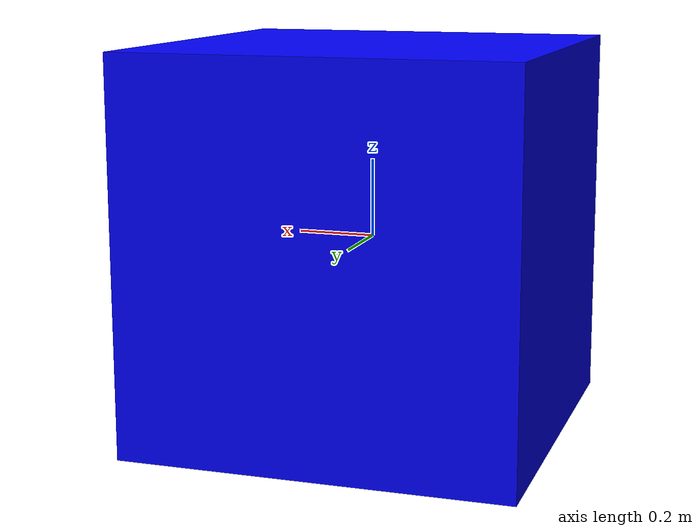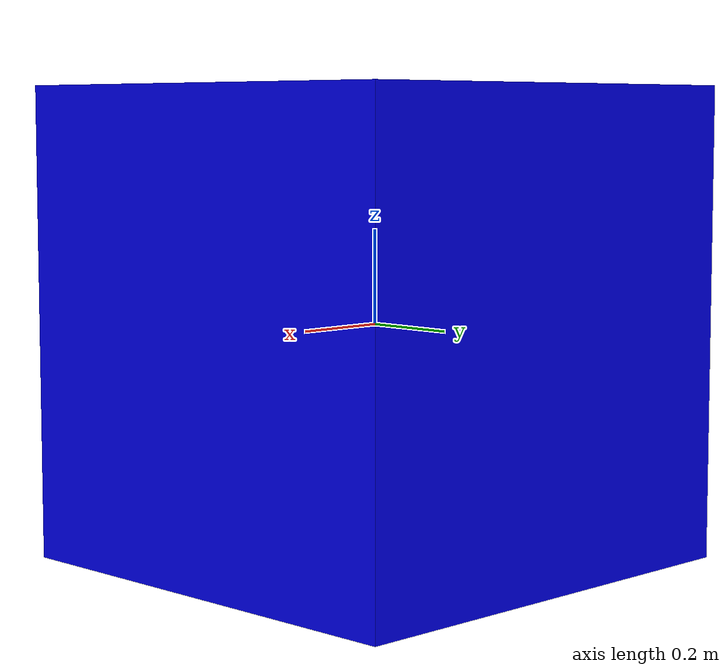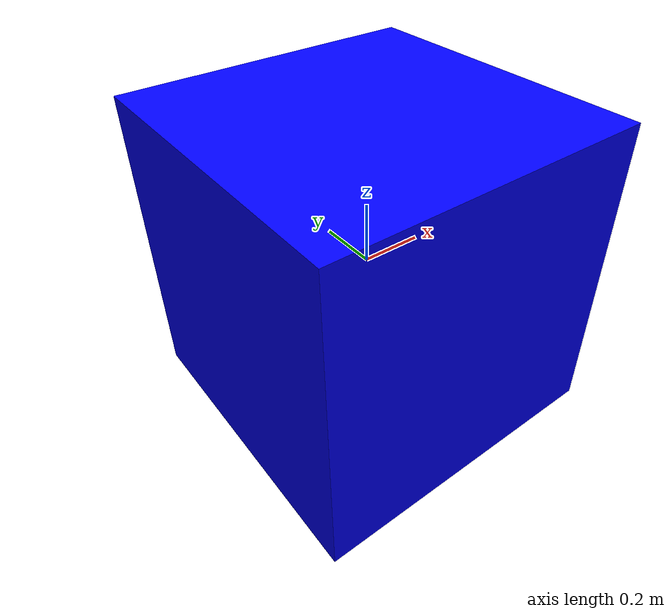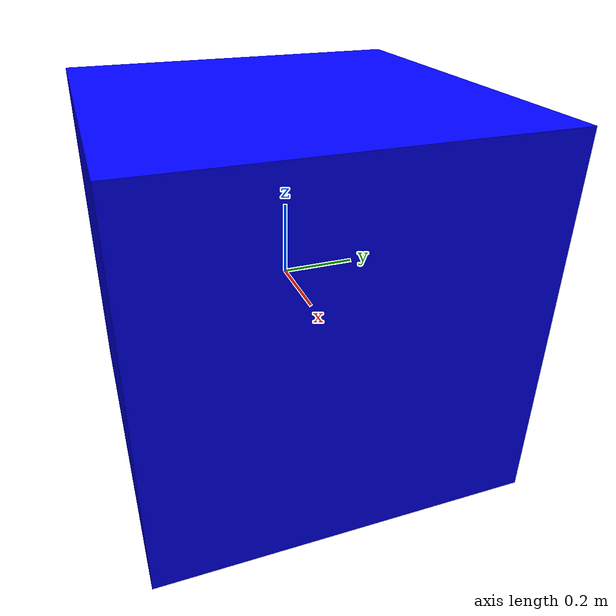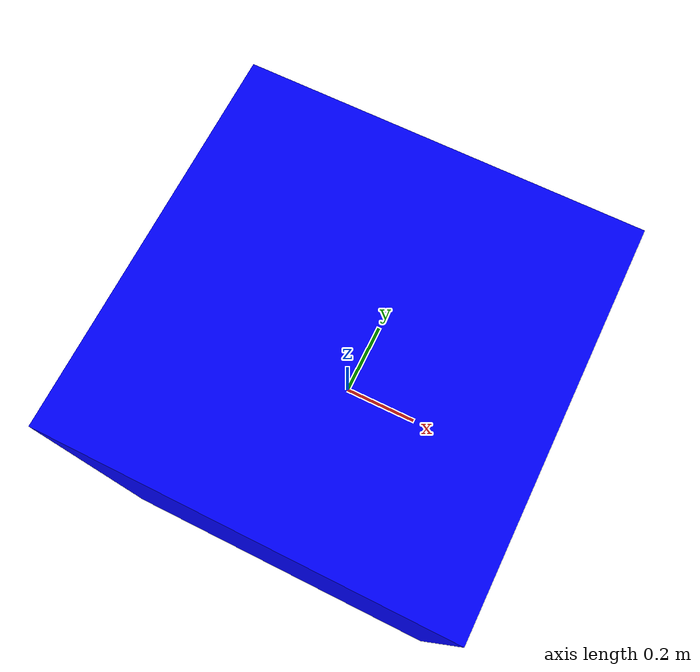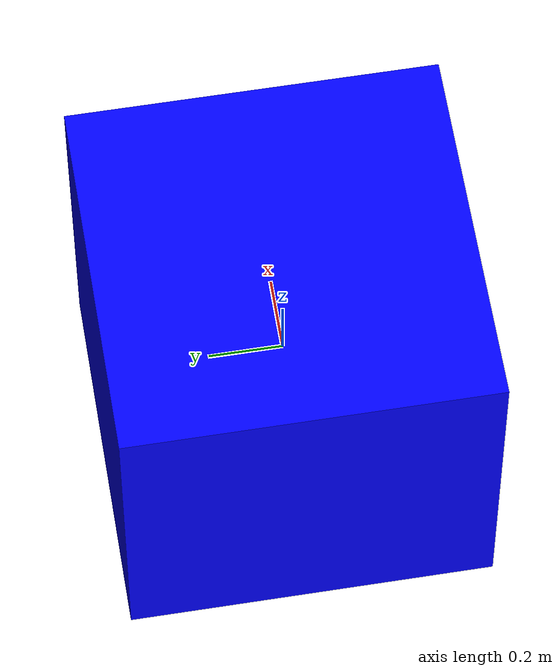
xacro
<?xml version="1.0"?>
<robot xmlns:xacro="http://ros.org/wiki/xacro">

  <link name="base_link">
    <visual>
      <geometry>
        <box size="1.0 1.0 1.0"/>
      </geometry>
      <origin rpy="0 0 0" xyz="0 0 0"/>
      <material name="blue">
        <color rgba="0 0 1 1"/>
      </material>
    </visual>

    <collision>
      <geometry>
        <box size="1.0 1.0 1.0"/>
      </geometry>
      <origin rpy="0 0 0" xyz="0 0 0"/>
      <material name="blue">
        <color rgba="0 0 1 1"/>
      </material>
    </collision>

    <inertial>
        <origin xyz="0.0 0.0 0.0" rpy="0.0 0.0 0.0" />
        <mass value="50" />
         <inertia ixx="0.1"  ixy="0"  ixz="0" iyy="0.1" iyz="0" izz="0.1" />
    </inertial>

    <rbdl_contact>
       <point value="0.5 0.5 -0.5"/>
       <point value="0.5 -0.5 -0.5"/>
       <point value="-0.5 0.5 -0.5"/>
       <point value="-0.5 -0.5 -0.5"/>
       <point value="0.5 0.5 0.5"/>
       <point value="0.5 -0.5 0.5"/>
       <point value="-0.5 0.5 0.5"/>
       <point value="-0.5 -0.5 0.5"/>
    </rbdl_contact>

 </link>

  <link name="box_link">
    <inertial>
      <mass value="0.01"/>
      <inertia ixx="0.04287677484" ixy="0.00043705397" ixz="0.00078292368" iyy="0.03598906971" iyz="0.00037717694" izz="0.01364791564" />
      <origin rpy="0 0 0" xyz="0.0 0.0 -0.5"/>
    </inertial>
    <visual>
      <origin rpy="0 0 0" xyz="0 0 0"/>
      <geometry>
        <cylinder length="0.1" radius="0.00005"/>
      </geometry>
      <material name="LightGrey" />
    </visual>
    <collision>
      <origin rpy="0 0 0" xyz="0 0 0"/>
      <geometry>
        <cylinder length="0.2" radius="0.00005"/>
      </geometry>
      <material name="White" />
    </collision>
  </link>
  <joint name="box_joint" type="prismatic">
    <parent link="base_link"/>
    <child link="box_link"/>
    <origin xyz="0.0 0.0 0.0"
            rpy="0.0 0.0 0.0"/>
    <axis xyz="0 0 1" />

    <limit lower="0" upper="0.2" effort="100.0" velocity="100.0" />
    <dynamics friction="1.0" damping="1.0"/>
  </joint>

  <transmission name="box_joint_trans">
     <type>transmission_interface/SimpleTransmission</type>
     <actuator name="box_motor" >
       <mechanicalReduction> 1.0 </mechanicalReduction>
     </actuator>
     <joint name="box_joint">
       <offset>0.0</offset>
       <hardwareInterface>hardware_interface/PositionJointInterface</hardwareInterface>
       <hardwareInterface>hardware_interface/EffortJointInterface</hardwareInterface>
       <hardwareInterface>hardware_interface/JointStateInterface</hardwareInterface>
     </joint>
  </transmission>

</robot>
